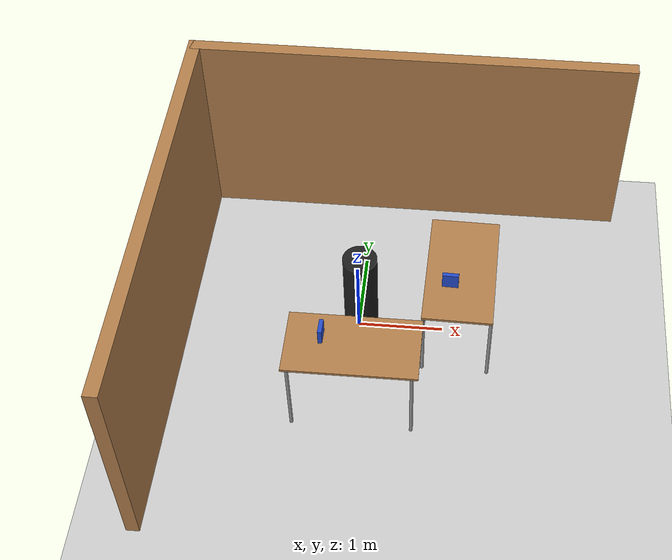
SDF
<sdf version="1.7">
 <world name="default">
  <light name="sun" type="directional">
   <pose>0 0 10 0 -0 0</pose>
   <diffuse>0.8 0.8 0.8 1</diffuse>
   <specular>0.2 0.2 0.2 1</specular>
   <attenuation>
    <range>1000</range>
    <constant>0.9</constant>
    <linear>0.01</linear>
    <quadratic>0.001</quadratic>
   </attenuation>
   <direction>-0.5 0.1 -0.9</direction>
   <spot><inner_angle>0</inner_angle><outer_angle>0</outer_angle><falloff>0</falloff></spot>
  </light>
  <model name="ground_plane">
   <static>1</static>
   <link name="link">
    <collision name="collision">
     <geometry><plane><normal>0 0 1</normal><size>100 100</size></plane></geometry>
     <surface>
      <contact><collide_bitmask>65535</collide_bitmask></contact>
      <friction><ode><mu>100</mu><mu2>50</mu2></ode></friction>
     </surface>
    </collision>
    <visual name="visual">
     <cast_shadows>0</cast_shadows>
     <geometry><plane><normal>0 0 1</normal><size>100 100</size></plane></geometry>
     <material>
      <script><uri>file://media/materials/scripts/gazebo.material</uri><name>Gazebo/Grey</name></script>
     </material>
    </visual>
   </link>
  </model>
  <gravity>0 0 -9.8</gravity>
  <magnetic_field>6e-06 2.3e-05 -4.2e-05</magnetic_field>
  <atmosphere type="adiabatic"/>
  <physics type="ode">
   <max_step_size>0.001</max_step_size>
   <real_time_factor>1</real_time_factor>
   <real_time_update_rate>1000</real_time_update_rate>
  </physics>
  <scene><ambient>0.4 0.4 0.4 1</ambient><background>0.7 0.7 0.7 1</background><shadows>1</shadows></scene>
  <spherical_coordinates>
   <surface_model>EARTH_WGS84</surface_model>
   <latitude_deg>0</latitude_deg>
   <longitude_deg>0</longitude_deg>
   <elevation>0</elevation>
   <heading_deg>0</heading_deg>
  </spherical_coordinates>
  <model name="table">
   <static>1</static>
   <link name="link">
    <collision name="surface">
     <pose>0 0 1 0 -0 0</pose>
     <geometry><box><size>1.5 0.8 0.03</size></box></geometry>
     <surface><friction><ode><mu>0.6</mu><mu2>0.6</mu2></ode></friction></surface>
    </collision>
    <visual name="visual1">
     <pose>0 0 1 0 -0 0</pose>
     <geometry><box><size>1.5 0.8 0.03</size></box></geometry>
     <material>
      <script><uri>file://media/materials/scripts/gazebo.material</uri><name>Gazebo/Wood</name></script>
     </material>
    </visual>
    <collision name="front_left_leg">
     <pose>0.68 0.38 0.5 0 -0 0</pose>
     <geometry><cylinder><radius>0.02</radius><length>1</length></cylinder></geometry>
    </collision>
    <visual name="front_left_leg">
     <pose>0.68 0.38 0.5 0 -0 0</pose>
     <geometry><cylinder><radius>0.02</radius><length>1</length></cylinder></geometry>
     <material>
      <script><uri>file://media/materials/scripts/gazebo.material</uri><name>Gazebo/Grey</name></script>
     </material>
    </visual>
    <collision name="front_right_leg">
     <pose>0.68 -0.38 0.5 0 -0 0</pose>
     <geometry><cylinder><radius>0.02</radius><length>1</length></cylinder></geometry>
    </collision>
    <visual name="front_right_leg">
     <pose>0.68 -0.38 0.5 0 -0 0</pose>
     <geometry><cylinder><radius>0.02</radius><length>1</length></cylinder></geometry>
     <material>
      <script><uri>file://media/materials/scripts/gazebo.material</uri><name>Gazebo/Grey</name></script>
     </material>
    </visual>
    <collision name="back_right_leg">
     <pose>-0.68 -0.38 0.5 0 -0 0</pose>
     <geometry><cylinder><radius>0.02</radius><length>1</length></cylinder></geometry>
    </collision>
    <visual name="back_right_leg">
     <pose>-0.68 -0.38 0.5 0 -0 0</pose>
     <geometry><cylinder><radius>0.02</radius><length>1</length></cylinder></geometry>
     <material>
      <script><uri>file://media/materials/scripts/gazebo.material</uri><name>Gazebo/Grey</name></script>
     </material>
    </visual>
    <collision name="back_left_leg">
     <pose>-0.68 0.38 0.5 0 -0 0</pose>
     <geometry><cylinder><radius>0.02</radius><length>1</length></cylinder></geometry>
    </collision>
    <visual name="back_left_leg">
     <pose>-0.68 0.38 0.5 0 -0 0</pose>
     <geometry><cylinder><radius>0.02</radius><length>1</length></cylinder></geometry>
     <material>
      <script><uri>file://media/materials/scripts/gazebo.material</uri><name>Gazebo/Grey</name></script>
     </material>
    </visual>
   </link>
   <pose>0.054325 -1.08489 0 0 -0 0</pose>
  </model>
  <model name="table_0">
   <static>1</static>
   <link name="link">
    <collision name="surface">
     <pose>0 0 1 0 -0 0</pose>
     <geometry><box><size>1.5 0.8 0.03</size></box></geometry>
     <surface><friction><ode><mu>0.6</mu><mu2>0.6</mu2></ode></friction></surface>
    </collision>
    <visual name="visual1">
     <pose>0 0 1 0 -0 0</pose>
     <geometry><box><size>1.5 0.8 0.03</size></box></geometry>
     <material>
      <script><uri>file://media/materials/scripts/gazebo.material</uri><name>Gazebo/Wood</name></script>
     </material>
    </visual>
    <collision name="front_left_leg">
     <pose>0.68 0.38 0.5 0 -0 0</pose>
     <geometry><cylinder><radius>0.02</radius><length>1</length></cylinder></geometry>
    </collision>
    <visual name="front_left_leg">
     <pose>0.68 0.38 0.5 0 -0 0</pose>
     <geometry><cylinder><radius>0.02</radius><length>1</length></cylinder></geometry>
     <material>
      <script><uri>file://media/materials/scripts/gazebo.material</uri><name>Gazebo/Grey</name></script>
     </material>
    </visual>
    <collision name="front_right_leg">
     <pose>0.68 -0.38 0.5 0 -0 0</pose>
     <geometry><cylinder><radius>0.02</radius><length>1</length></cylinder></geometry>
    </collision>
    <visual name="front_right_leg">
     <pose>0.68 -0.38 0.5 0 -0 0</pose>
     <geometry><cylinder><radius>0.02</radius><length>1</length></cylinder></geometry>
     <material>
      <script><uri>file://media/materials/scripts/gazebo.material</uri><name>Gazebo/Grey</name></script>
     </material>
    </visual>
    <collision name="back_right_leg">
     <pose>-0.68 -0.38 0.5 0 -0 0</pose>
     <geometry><cylinder><radius>0.02</radius><length>1</length></cylinder></geometry>
    </collision>
    <visual name="back_right_leg">
     <pose>-0.68 -0.38 0.5 0 -0 0</pose>
     <geometry><cylinder><radius>0.02</radius><length>1</length></cylinder></geometry>
     <material>
      <script><uri>file://media/materials/scripts/gazebo.material</uri><name>Gazebo/Grey</name></script>
     </material>
    </visual>
    <collision name="back_left_leg">
     <pose>-0.68 0.38 0.5 0 -0 0</pose>
     <geometry><cylinder><radius>0.02</radius><length>1</length></cylinder></geometry>
    </collision>
    <visual name="back_left_leg">
     <pose>-0.68 0.38 0.5 0 -0 0</pose>
     <geometry><cylinder><radius>0.02</radius><length>1</length></cylinder></geometry>
     <material>
      <script><uri>file://media/materials/scripts/gazebo.material</uri><name>Gazebo/Grey</name></script>
     </material>
    </visual>
   </link>
   <pose>1.19069 0.091961 0 0 0 -1.59125</pose>
  </model>
  <model name="unit_cylinder">
   <link name="link">
    <inertial>
     <mass>5</mass>
     <inertia><ixx>0.729167</ixx><ixy>0</ixy><ixz>0</ixz><iyy>0.729167</iyy><iyz>0</iyz><izz>0.625</izz></inertia>
    </inertial>
    <pose>1.38666 -1.49103 0 0 -0 0</pose>
    <visual name="visual">
     <geometry><cylinder><radius>0.2</radius><length>1.2</length></cylinder></geometry>
     <material>
      <script><name>Gazebo/Black</name><uri>file://media/materials/scripts/gazebo.material</uri></script>
      <shader type="pixel"><normal_map>__default__</normal_map></shader>
      <ambient>0.3 0.3 0.3 1</ambient>
      <diffuse>0.7 0.7 0.7 1</diffuse>
      <specular>0.01 0.01 0.01 1</specular>
      <emissive>0 0 0 1</emissive>
     </material>
    </visual>
    <collision name="collision">
     <geometry><cylinder><radius>0.2</radius><length>1.2</length></cylinder></geometry>
     <surface>
      <friction>
       <ode><mu>10</mu><mu2>10</mu2><fdir1>0 0 0</fdir1><slip1>0</slip1><slip2>0</slip2></ode>
       <torsional>
        <coefficient>1</coefficient>
        <patch_radius>0</patch_radius>
        <surface_radius>0</surface_radius>
        <use_patch_radius>1</use_patch_radius>
        <ode><slip>0</slip></ode>
       </torsional>
      </friction>
      <bounce><restitution_coefficient>0</restitution_coefficient><threshold>1e+06</threshold></bounce>
      <contact>
       <collide_without_contact>0</collide_without_contact>
       <collide_without_contact_bitmask>1</collide_without_contact_bitmask>
       <collide_bitmask>1</collide_bitmask>
       <ode>
        <soft_cfm>0</soft_cfm>
        <soft_erp>0.2</soft_erp>
        <kp>1e+13</kp>
        <kd>1</kd>
        <max_vel>0.01</max_vel>
        <min_depth>0</min_depth>
       </ode>
       <bullet>
        <split_impulse>1</split_impulse>
        <split_impulse_penetration_threshold>-0.01</split_impulse_penetration_threshold>
        <soft_cfm>0</soft_cfm>
        <soft_erp>0.2</soft_erp>
        <kp>1e+13</kp>
        <kd>1</kd>
       </bullet>
      </contact>
     </surface>
    </collision>
   </link>
   <static>0</static>
   <pose>-1.35804 1.48715 0.599992 0 -0 1.6e-05</pose>
  </model>
  <model name="Untitled">
   <pose>0.43985 -0.445 0 0 -0 0</pose>
   <link name="Wall_0">
    <collision name="Wall_0_Collision">
     <geometry><box><size>5.08004 0.15 2.5</size></box></geometry>
     <pose>0 0 1.25 0 -0 0</pose>
    </collision>
    <visual name="Wall_0_Visual">
     <pose>0 0 1.25 0 -0 0</pose>
     <geometry><box><size>5.08004 0.15 2.5</size></box></geometry>
     <material>
      <script><uri>file://media/materials/scripts/gazebo.material</uri><name>Gazebo/Wood</name></script>
      <ambient>1 1 1 1</ambient>
     </material>
     <meta><layer>0</layer></meta>
    </visual>
    <pose>-2.54985 -0 0 0 -0 1.56674</pose>
   </link>
   <link name="Wall_2">
    <collision name="Wall_2_Collision">
     <geometry><box><size>5.25 0.15 2.5</size></box></geometry>
     <pose>0 0 1.25 0 -0 0</pose>
    </collision>
    <visual name="Wall_2_Visual">
     <pose>0 0 1.25 0 -0 0</pose>
     <geometry><box><size>5.25 0.15 2.5</size></box></geometry>
     <material>
      <script><uri>file://media/materials/scripts/gazebo.material</uri><name>Gazebo/Wood</name></script>
      <ambient>1 1 1 1</ambient>
     </material>
     <meta><layer>0</layer></meta>
    </visual>
    <pose>0.010152 2.465 0 0 -0 0</pose>
   </link>
   <static>1</static>
  </model>
  <model name="unit_box_0_clone">
   <link name="link">
    <inertial>
     <mass>0.01</mass>
     <inertia>
      <ixx>0.00024998</ixx>
      <ixy>0</ixy>
      <ixz>0</ixz>
      <iyy>0.00010561</iyy>
      <iyz>0</iyz>
      <izz>0.00014803</izz>
     </inertia>
    </inertial>
    <visual name="visual">
     <geometry><box><size>0.046805 0.18543 0.190385</size></box></geometry>
     <material>
      <script><name>Gazebo/Blue</name><uri>file://media/materials/scripts/gazebo.material</uri></script>
      <shader type="pixel"><normal_map>__default__</normal_map></shader>
      <ambient>0 0 1 1</ambient>
      <diffuse>0 0 1 1</diffuse>
      <specular>0.1 0.1 0.1 1</specular>
      <emissive>0 0 0 1</emissive>
     </material>
    </visual>
    <collision name="collision">
     <geometry><box><size>0.046805 0.18543 0.190385</size></box></geometry>
     <surface>
      <friction>
       <ode><mu>1000</mu><mu2>1000</mu2><fdir1>0 0 0</fdir1><slip1>0</slip1><slip2>0</slip2></ode>
       <torsional>
        <coefficient>1</coefficient>
        <patch_radius>0</patch_radius>
        <surface_radius>0</surface_radius>
        <use_patch_radius>1</use_patch_radius>
        <ode><slip>0</slip></ode>
       </torsional>
      </friction>
      <bounce><restitution_coefficient>0</restitution_coefficient><threshold>1e+06</threshold></bounce>
      <contact>
       <collide_without_contact>0</collide_without_contact>
       <collide_without_contact_bitmask>1</collide_without_contact_bitmask>
       <collide_bitmask>1</collide_bitmask>
       <ode>
        <soft_cfm>0</soft_cfm>
        <soft_erp>0.2</soft_erp>
        <kp>1e+13</kp>
        <kd>1</kd>
        <max_vel>0.01</max_vel>
        <min_depth>0</min_depth>
       </ode>
       <bullet>
        <split_impulse>1</split_impulse>
        <split_impulse_penetration_threshold>-0.01</split_impulse_penetration_threshold>
        <soft_cfm>0</soft_cfm>
        <soft_erp>0.2</soft_erp>
        <kp>1e+13</kp>
        <kd>1</kd>
       </bullet>
      </contact>
     </surface>
    </collision>
   </link>
   <static>0</static>
   <pose>1.07301 -0.153752 1.11019 2e-06 6e-06 1.53753</pose>
  </model>
  <model name="unit_box_0_clone_clone">
   <link name="link">
    <inertial>
     <mass>0.01</mass>
     <inertia><ixx>0.5</ixx><ixy>0</ixy><ixz>0</ixz><iyy>0.5</iyy><iyz>0</iyz><izz>0.5</izz></inertia>
    </inertial>
    <visual name="visual">
     <geometry><box><size>0.046805 0.18543 0.190385</size></box></geometry>
     <material>
      <script><name>Gazebo/Blue</name><uri>file://media/materials/scripts/gazebo.material</uri></script>
      <shader type="pixel"><normal_map>__default__</normal_map></shader>
      <ambient>0 0 1 1</ambient>
      <diffuse>0 0 1 1</diffuse>
      <specular>0.1 0.1 0.1 1</specular>
      <emissive>0 0 0 1</emissive>
     </material>
    </visual>
    <collision name="collision">
     <geometry><box><size>0.046805 0.18543 0.190385</size></box></geometry>
     <surface>
      <friction>
       <ode><mu>1000</mu><mu2>1000</mu2><fdir1>0 0 0</fdir1><slip1>0</slip1><slip2>0</slip2></ode>
       <torsional>
        <coefficient>1</coefficient>
        <patch_radius>0</patch_radius>
        <surface_radius>0</surface_radius>
        <use_patch_radius>1</use_patch_radius>
        <ode><slip>0</slip></ode>
       </torsional>
      </friction>
      <bounce><restitution_coefficient>0</restitution_coefficient><threshold>1e+06</threshold></bounce>
      <contact>
       <collide_without_contact>0</collide_without_contact>
       <collide_without_contact_bitmask>1</collide_without_contact_bitmask>
       <collide_bitmask>1</collide_bitmask>
       <ode>
        <soft_cfm>0</soft_cfm>
        <soft_erp>0.2</soft_erp>
        <kp>1e+13</kp>
        <kd>1</kd>
        <max_vel>0.01</max_vel>
        <min_depth>0</min_depth>
       </ode>
       <bullet>
        <split_impulse>1</split_impulse>
        <split_impulse_penetration_threshold>-0.01</split_impulse_penetration_threshold>
        <soft_cfm>0</soft_cfm>
        <soft_erp>0.2</soft_erp>
        <kp>1e+13</kp>
        <kd>1</kd>
       </bullet>
      </contact>
     </surface>
    </collision>
   </link>
   <static>0</static>
   <pose>-0.30054 -1.00026 1.11019 -5e-06 -1.2e-05 -0.014061</pose>
  </model>
 </world>
</sdf>
